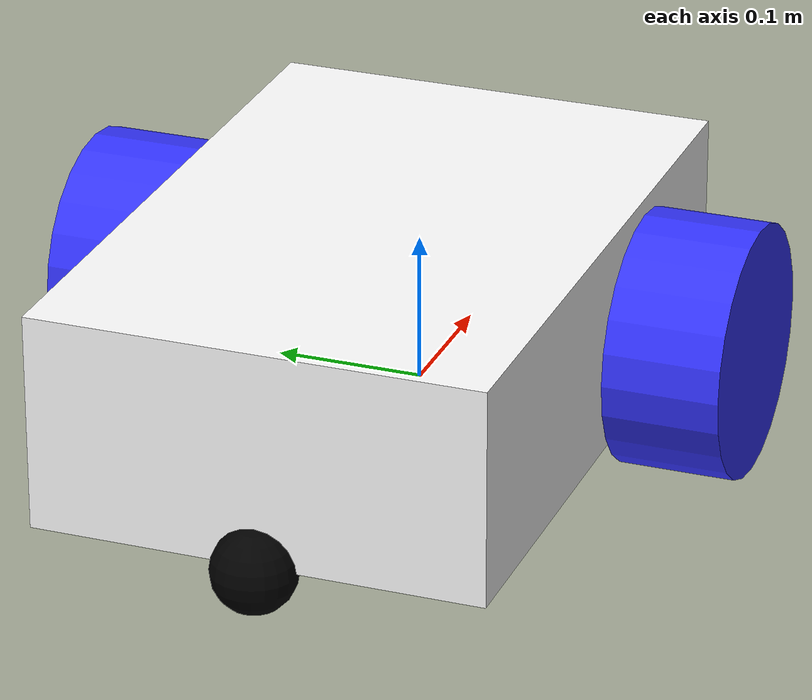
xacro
<?xml version="1.0"?>
<robot xmlns:xacro="http://www.ros.org/wiki/xacro">

    <xacro:include filename="inertial_macros.xacro"/>

    <material name="white">
        <color rgba="1 1 1 1"/>
    </material>

    <material name="orange">
        <color rgba="1 0.3 0.1 1"/>
    </material>

    <material name="blue">
        <color rgba="0.2 0.2 1 1"/>
    </material>

    <material name="black">
        <color rgba="0 0 0 1"/>
    </material>

    <!-- Base Link -->
    <link name="base_link">

    </link>

    <!-- Base_Footprint Link-->

    <joint name="base_footprint_joint" type="fixed">
	<parent link="base_link"/>
	<child link="base_footprint"/>
	<origin xyz="0 0 0" rpy="0 0 0"/>
    </joint>

    <link name="base_footprint">
    </link>

    <!-- Chassis Link -->

    <joint name="chassis_joint" type="fixed">
        <parent link="base_link"/>
        <child link="chassis"/>
        <origin xyz="-0.29 0 0"/>
    </joint>

    <link name="chassis">
        <visual>
            <origin xyz="0.22 0 0.074"/>
            <geometry>
                <box size="0.44 0.3 0.144"/>
            </geometry>
            <material name="white"/>
        </visual>

        <collision>
            <origin xyz="0.22 0 0.074"/>
            <geometry>
                <box size="0.44 0.3 0.144"/>
            </geometry>
        </collision>
        <xacro:inertial_box mass="2" x="0.44" y="0.3" z="0.144">
            <origin xyz="0.22 0 0.074" rpy="0 0 0"/>
        </xacro:inertial_box>
    </link>

    <gazebo reference="chassis">
        <material>Gazebo/White</material>
    </gazebo>

    <!-- Left Wheel Link -->

    <joint name="left_wheel_joint" type="continuous">
        <parent link="base_link"/>
        <child link="Left_wheel"/>
        <origin xyz="0 0.192 0.056" rpy="-${pi/2} 0 0"/>
        <axis xyz="0 0 1"/>
    </joint>

    <link name="Left_wheel">
        <visual>
            <geometry>
                <cylinder radius="0.084" length="0.077"/>
            </geometry>
            <material name="blue"/>
        </visual>

        <collision>
            <geometry>
                <cylinder radius="0.084" length="0.077"/>
            </geometry>
        </collision>
        <xacro:inertial_cylinder mass="0.5" length="0.077" radius="0.084">
            <origin xyz="0 0 0" rpy="0 0 0"/>
        </xacro:inertial_cylinder>
    </link>

    <gazebo reference="Left_wheel">
        <material>Gazebo/Blue</material>
    </gazebo>

    <!-- Right Wheel Link -->

    <joint name="right_wheel_joint" type="continuous">
        <parent link="base_link"/>
        <child link="Right_wheel"/>
        <origin xyz="0 -0.192 0.056" rpy="${pi/2} 0 0"/>
        <axis xyz="0 0 -1"/>
    </joint>

    <link name="Right_wheel">
        <visual>
            <geometry>
                <cylinder radius="0.084" length="0.077"/>
            </geometry>
            <material name="blue"/>
        </visual>
        <collision>
            <geometry>
                <cylinder radius="0.084" length="0.077"/>
            </geometry>
        </collision>
        <xacro:inertial_cylinder mass="0.5" length="0.077" radius="0.084">
            <origin xyz="0 0 0" rpy="0 0 0"/>
        </xacro:inertial_cylinder>
    </link>

    <gazebo reference="Right_wheel">
        <material>Gazebo/Blue</material>
    </gazebo>

     <!-- CASTER WHEEL LINK -->

    <joint name="caster_wheel_joint" type="fixed">
        <parent link="chassis"/>
        <child link="caster_wheel"/>
        <origin xyz="0 0 0"/>
    </joint>

    <link name="caster_wheel">
        <visual>
            <geometry>
                <sphere radius="0.028"/>
            </geometry>
            <material name="black"/>
        </visual>
        <collision>
            <geometry>
                <sphere radius="0.028"/>
            </geometry>
        </collision>
        <xacro:inertial_sphere mass="0.1" radius="0.028">
            <origin xyz="0 0 0" rpy="0 0 0"/>
        </xacro:inertial_sphere>
    </link>
    <gazebo reference="caster_wheel">
        <material>Gazebo/Black</material>
        <mu1 value="0.001"/>
        <mu2 value="0.001"/>
    </gazebo>

</robot>
